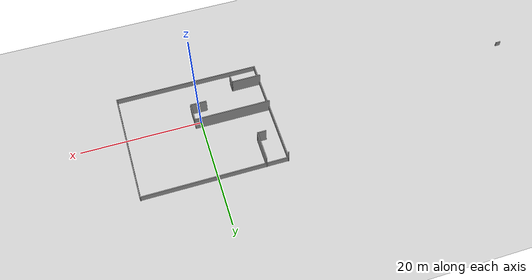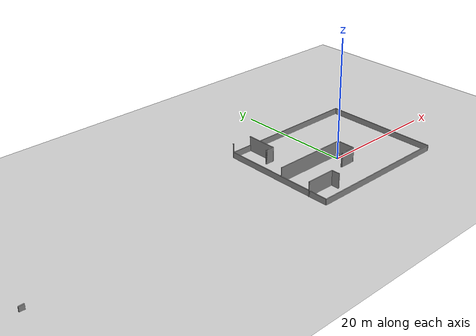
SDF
<sdf version="1.7">
 <world name="default">
  <light name="sun" type="directional">
   <pose>0 0 10 0 -0 0</pose>
   <diffuse>0.8 0.8 0.8 1</diffuse>
   <specular>0.2 0.2 0.2 1</specular>
   <attenuation>
    <range>1000</range>
    <constant>0.9</constant>
    <linear>0.01</linear>
    <quadratic>0.001</quadratic>
   </attenuation>
   <direction>-0.5 0.1 -0.9</direction>
   <spot><inner_angle>0</inner_angle><outer_angle>0</outer_angle><falloff>0</falloff></spot>
  </light>
  <model name="ground_plane">
   <static>1</static>
   <link name="link">
    <collision name="collision">
     <geometry><plane><normal>0 0 1</normal><size>100 100</size></plane></geometry>
     <surface>
      <contact><collide_bitmask>65535</collide_bitmask></contact>
      <friction><ode><mu>100</mu><mu2>50</mu2></ode></friction>
     </surface>
    </collision>
    <visual name="visual">
     <cast_shadows>0</cast_shadows>
     <geometry><plane><normal>0 0 1</normal><size>100 100</size></plane></geometry>
     <material>
      <script><uri>file://media/materials/scripts/gazebo.material</uri><name>Gazebo/Grey</name></script>
     </material>
    </visual>
   </link>
  </model>
  <gravity>0 0 -9.8</gravity>
  <magnetic_field>6e-06 2.3e-05 -4.2e-05</magnetic_field>
  <atmosphere type="adiabatic"/>
  <physics type="ode">
   <max_step_size>0.001</max_step_size>
   <real_time_factor>1</real_time_factor>
   <real_time_update_rate>1000</real_time_update_rate>
  </physics>
  <scene><ambient>0.4 0.4 0.4 1</ambient><background>0.7 0.7 0.7 1</background><shadows>1</shadows></scene>
  <audio><device>default</device></audio>
  <spherical_coordinates>
   <surface_model>EARTH_WGS84</surface_model>
   <latitude_deg>0</latitude_deg>
   <longitude_deg>0</longitude_deg>
   <elevation>0</elevation>
   <heading_deg>0</heading_deg>
  </spherical_coordinates>
  <model name="TEST">
   <pose>0.444005 1.7141 0 0 -0 0</pose>
   <link name="Wall_0">
    <collision name="Wall_0_Collision">
     <geometry><box><size>24.2305 0.15 1</size></box></geometry>
     <pose>0 0 0.5 0 -0 0</pose>
    </collision>
    <visual name="Wall_0_Visual">
     <pose>0 0 0.5 0 -0 0</pose>
     <geometry><box><size>24.2305 0.15 1</size></box></geometry>
     <material>
      <script><uri>file://media/materials/scripts/gazebo.material</uri><name>Gazebo/Grey</name></script>
      <ambient>1 1 1 1</ambient>
     </material>
     <meta><layer>0</layer></meta>
    </visual>
    <pose>0.031688 9.83396 0 0 -0 -0.000478</pose>
   </link>
   <link name="Wall_1">
    <collision name="Wall_1_Collision">
     <geometry><box><size>19.9038 0.15 1</size></box></geometry>
     <pose>0 0 0.5 0 -0 0</pose>
    </collision>
    <visual name="Wall_1_Visual">
     <pose>0 0 0.5 0 -0 0</pose>
     <geometry><box><size>19.9038 0.15 1</size></box></geometry>
     <material>
      <script><uri>file://media/materials/scripts/gazebo.material</uri><name>Gazebo/Grey</name></script>
      <ambient>1 1 1 1</ambient>
     </material>
     <meta><layer>0</layer></meta>
    </visual>
    <pose>12.0695 -0.00822 0 0 -0 -1.57105</pose>
   </link>
   <link name="Wall_15">
    <collision name="Wall_15_Collision">
     <geometry><box><size>5.25 0.15 2.5</size></box></geometry>
     <pose>0 0 1.25 0 -0 0</pose>
    </collision>
    <visual name="Wall_15_Visual">
     <pose>0 0 1.25 0 -0 0</pose>
     <geometry><box><size>5.25 0.15 2.5</size></box></geometry>
     <material>
      <script><uri>file://media/materials/scripts/gazebo.material</uri><name>Gazebo/Grey</name></script>
      <ambient>1 1 1 1</ambient>
     </material>
     <meta><layer>0</layer></meta>
    </visual>
    <pose>-8.37056 7.33512 0 0 -0 -1.5708</pose>
   </link>
   <link name="Wall_16">
    <collision name="Wall_16_Collision">
     <geometry><box><size>1.5 0.15 2.5</size></box></geometry>
     <pose>0 0 1.25 0 -0 0</pose>
    </collision>
    <visual name="Wall_16_Visual">
     <pose>0 0 1.25 0 -0 0</pose>
     <geometry><box><size>1.5 0.15 2.5</size></box></geometry>
     <material>
      <script><uri>file://media/materials/scripts/gazebo.material</uri><name>Gazebo/Grey</name></script>
      <ambient>1 1 1 1</ambient>
     </material>
     <meta><layer>0</layer></meta>
    </visual>
    <pose>-9.04556 4.78512 0 0 -0 3.14159</pose>
   </link>
   <link name="Wall_17">
    <collision name="Wall_17_Collision">
     <geometry><box><size>0.15 0.15 2.5</size></box></geometry>
     <pose>0 0 1.25 0 -0 0</pose>
    </collision>
    <visual name="Wall_17_Visual">
     <pose>0 0 1.25 0 -0 0</pose>
     <geometry><box><size>0.15 0.15 2.5</size></box></geometry>
     <material>
      <script><uri>file://media/materials/scripts/gazebo.material</uri><name>Gazebo/Grey</name></script>
      <ambient>1 1 1 1</ambient>
     </material>
     <meta><layer>0</layer></meta>
    </visual>
    <pose>-9.72056 4.78512 0 0 -0 0</pose>
   </link>
   <link name="Wall_18">
    <collision name="Wall_18_Collision">
     <geometry><box><size>0.15 0.15 2.5</size></box></geometry>
     <pose>0 0 1.25 0 -0 0</pose>
    </collision>
    <visual name="Wall_18_Visual">
     <pose>0 0 1.25 0 -0 0</pose>
     <geometry><box><size>0.15 0.15 2.5</size></box></geometry>
     <material>
      <script><uri>file://media/materials/scripts/gazebo.material</uri><name>Gazebo/Grey</name></script>
      <ambient>1 1 1 1</ambient>
     </material>
     <meta><layer>0</layer></meta>
    </visual>
    <pose>-9.72056 4.78512 0 0 -0 0</pose>
   </link>
   <link name="Wall_2">
    <collision name="Wall_2_Collision">
     <geometry><box><size>24.2305 0.15 1</size></box></geometry>
     <pose>0 0 0.5 0 -0 0</pose>
    </collision>
    <visual name="Wall_2_Visual">
     <pose>0 0 0.5 0 -0 0</pose>
     <geometry><box><size>24.2305 0.15 1</size></box></geometry>
     <material>
      <script><uri>file://media/materials/scripts/gazebo.material</uri><name>Gazebo/Grey</name></script>
      <ambient>1 1 1 1</ambient>
     </material>
     <meta><layer>0</layer></meta>
    </visual>
    <pose>0.026745 -9.86786 0 0 -0 3.14112</pose>
   </link>
   <link name="Wall_20">
    <collision name="Wall_20_Collision">
     <geometry><box><size>5 0.15 2.5</size></box></geometry>
     <pose>0 0 1.25 0 -0 0</pose>
    </collision>
    <visual name="Wall_20_Visual">
     <pose>0 0 1.25 0 -0 0</pose>
     <geometry><box><size>5 0.15 2.5</size></box></geometry>
     <material>
      <script><uri>file://media/materials/scripts/gazebo.material</uri><name>Gazebo/Grey</name></script>
      <ambient>1 1 1 1</ambient>
     </material>
     <meta><layer>0</layer></meta>
    </visual>
    <pose>-9.64697 -6.57242 0 0 -0 0</pose>
   </link>
   <link name="Wall_21">
    <collision name="Wall_21_Collision">
     <geometry><box><size>1.5 0.15 2.5</size></box></geometry>
     <pose>0 0 1.25 0 -0 0</pose>
    </collision>
    <visual name="Wall_21_Visual">
     <pose>0 0 1.25 0 -0 0</pose>
     <geometry><box><size>1.5 0.15 2.5</size></box></geometry>
     <material>
      <script><uri>file://media/materials/scripts/gazebo.material</uri><name>Gazebo/Grey</name></script>
      <ambient>1 1 1 1</ambient>
     </material>
     <meta><layer>0</layer></meta>
    </visual>
    <pose>-7.22197 -7.24742 0 0 -0 -1.5708</pose>
   </link>
   <link name="Wall_23">
    <collision name="Wall_23_Collision">
     <geometry><box><size>12.75 0.15 2.5</size></box></geometry>
     <pose>0 0 1.25 0 -0 0</pose>
    </collision>
    <visual name="Wall_23_Visual">
     <pose>0 0 1.25 0 -0 0</pose>
     <geometry><box><size>12.75 0.15 2.5</size></box></geometry>
     <material>
      <script><uri>file://media/materials/scripts/gazebo.material</uri><name>Gazebo/Grey</name></script>
      <ambient>1 1 1 1</ambient>
     </material>
     <meta><layer>0</layer></meta>
    </visual>
    <pose>-5.71079 -0.852047 0 0 -0 0</pose>
   </link>
   <link name="Wall_24">
    <collision name="Wall_24_Collision">
     <geometry><box><size>3.25 0.15 2.5</size></box></geometry>
     <pose>0 0 1.25 0 -0 0</pose>
    </collision>
    <visual name="Wall_24_Visual">
     <pose>0 0 1.25 0 -0 0</pose>
     <geometry><box><size>3.25 0.15 2.5</size></box></geometry>
     <material>
      <script><uri>file://media/materials/scripts/gazebo.material</uri><name>Gazebo/Grey</name></script>
      <ambient>1 1 1 1</ambient>
     </material>
     <meta><layer>0</layer></meta>
    </visual>
    <pose>0.589207 -2.40205 0 0 -0 -1.5708</pose>
   </link>
   <link name="Wall_25">
    <collision name="Wall_25_Collision">
     <geometry><box><size>2.75 0.15 2.5</size></box></geometry>
     <pose>0 0 1.25 0 -0 0</pose>
    </collision>
    <visual name="Wall_25_Visual">
     <pose>0 0 1.25 0 -0 0</pose>
     <geometry><box><size>2.75 0.15 2.5</size></box></geometry>
     <material>
      <script><uri>file://media/materials/scripts/gazebo.material</uri><name>Gazebo/Grey</name></script>
      <ambient>1 1 1 1</ambient>
     </material>
     <meta><layer>0</layer></meta>
    </visual>
    <pose>-0.710793 -3.95205 0 0 -0 3.14159</pose>
   </link>
   <link name="Wall_26">
    <collision name="Wall_26_Collision">
     <geometry><box><size>0.15 0.15 2.5</size></box></geometry>
     <pose>0 0 1.25 0 -0 0</pose>
    </collision>
    <visual name="Wall_26_Visual">
     <pose>0 0 1.25 0 -0 0</pose>
     <geometry><box><size>0.15 0.15 2.5</size></box></geometry>
     <material>
      <script><uri>file://media/materials/scripts/gazebo.material</uri><name>Gazebo/Grey</name></script>
      <ambient>1 1 1 1</ambient>
     </material>
     <meta><layer>0</layer></meta>
    </visual>
    <pose>-2.01079 -3.95205 0 0 -0 0</pose>
   </link>
   <link name="Wall_27">
    <collision name="Wall_27_Collision">
     <geometry><box><size>0.15 0.15 2.5</size></box></geometry>
     <pose>0 0 1.25 0 -0 0</pose>
    </collision>
    <visual name="Wall_27_Visual">
     <pose>0 0 1.25 0 -0 0</pose>
     <geometry><box><size>0.15 0.15 2.5</size></box></geometry>
     <material>
      <script><uri>file://media/materials/scripts/gazebo.material</uri><name>Gazebo/Grey</name></script>
      <ambient>1 1 1 1</ambient>
     </material>
     <meta><layer>0</layer></meta>
    </visual>
    <pose>-2.01079 -3.95205 0 0 -0 0</pose>
   </link>
   <link name="Wall_3">
    <collision name="Wall_3_Collision">
     <geometry><box><size>19.8808 0.15 1</size></box></geometry>
     <pose>0 0 0.5 0 -0 0</pose>
    </collision>
    <visual name="Wall_3_Visual">
     <pose>0 0 0.5 0 -0 0</pose>
     <geometry><box><size>19.8808 0.15 1</size></box></geometry>
     <material>
      <script><uri>file://media/materials/scripts/gazebo.material</uri><name>Gazebo/Grey</name></script>
      <ambient>1 1 1 1</ambient>
     </material>
     <meta><layer>0</layer></meta>
    </visual>
    <pose>-12.011 0.01478 0 0 -0 1.57055</pose>
   </link>
   <link name="Wall_4">
    <collision name="Wall_4_Collision">
     <geometry><box><size>0.15 0.15 2.5</size></box></geometry>
     <pose>0 0 1.25 0 -0 0</pose>
    </collision>
    <visual name="Wall_4_Visual">
     <pose>0 0 1.25 0 -0 0</pose>
     <geometry><box><size>0.15 0.15 2.5</size></box></geometry>
     <material>
      <script><uri>file://media/materials/scripts/gazebo.material</uri><name>Gazebo/Grey</name></script>
      <ambient>1 1 1 1</ambient>
     </material>
     <meta><layer>0</layer></meta>
    </visual>
    <pose>-12.0086 9.88017 0 0 -0 0</pose>
   </link>
   <link name="Window_0">
    <collision name="Window_0_Collision">
     <geometry><box><size>0.8 0.17 0.8</size></box></geometry>
     <pose>0 0 0.4 0 -0 0</pose>
    </collision>
    <visual name="Window_0_Visual">
     <pose>0 0 0.4 0 -0 0</pose>
     <geometry><box><size>0.8 0.17 0.8</size></box></geometry>
     <material>
      <script><uri>file://media/materials/scripts/gazebo.material</uri><name>Gazebo/Grey</name></script>
     </material>
    </visual>
    <pose>-54.8578 -1.72752 0.5 0 -0 0</pose>
   </link>
   <static>1</static>
  </model>
 </world>
</sdf>
